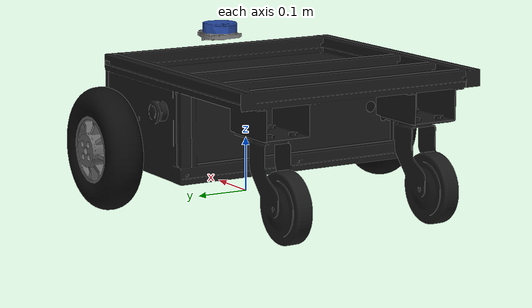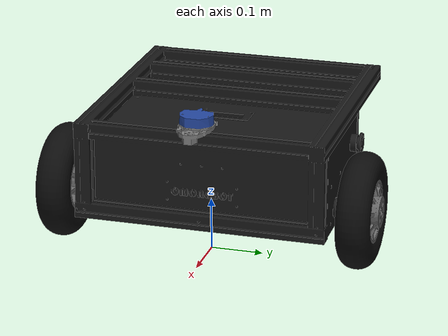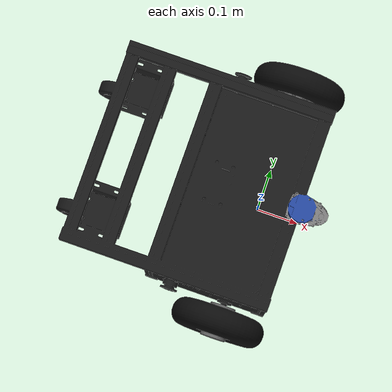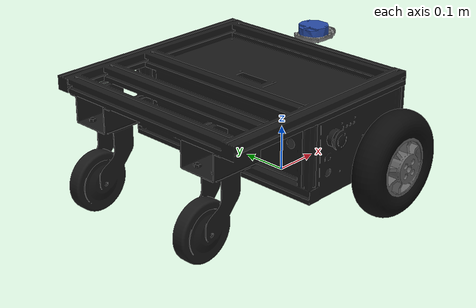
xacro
<?xml version="1.0" ?>
<robot name="omorobot_r1" xmlns:xacro="http://www.ros.org/wiki/xacro">
    <xacro:property name="wheel_diameter" value="0.22"/>
    <xacro:property name="wheel_speration" value="0.56"/>

    <xacro:include filename="$(find omorobot_r1_description)/urdf/gazebo.urdf.xacro"/>
    <xacro:include filename="$(find omorobot_r1_description)/urdf/transmission.urdf.xacro"/>

    <link name="base_footprint"/>

    <link name="base_link">
        <visual>
            <origin xyz="0 0 0" rpy="0 0 0"/>
            <geometry>
                <mesh filename="package://omorobot_r1_description/meshes/base.dae" scale="1 1 1"/>
            </geometry>
        </visual>
        <collision>
            <origin xyz="0 0 0" rpy="0 0 0"/>
            <geometry>
                <mesh filename="package://omorobot_r1_description/meshes/base.dae" scale="1 1 1"/>
            </geometry>
        </collision>
        <inertial>
            <mass value="35.0"/>
            <origin xyz="-0.150641 0 0.020826"/>
            <inertia ixx="0.873747" ixy="0.0" ixz="0.000870" iyy="0.905702" iyz="0.0" izz="1.375955"/>
        </inertial>
    </link>

    <joint name="base_fixed_joint" type="fixed">
        <parent link="base_footprint"/>
        <child link="base_link"/>
        <origin xyz="0 0 ${wheel_diameter/2}" rpy="0 0 0"/>
    </joint>

    <link name="l_wheel">
        <visual>
            <origin xyz="0 0 0" rpy="0 0 ${pi}"/>
            <geometry>
                <mesh filename="package://omorobot_r1_description/meshes/wheel.dae" scale="1 1 1"/>
            </geometry>
        </visual>
        <collision>
            <origin xyz="0 0 0" rpy="0 0 0"/>
            <geometry>
                <mesh filename="package://omorobot_r1_description/meshes/wheel.dae" scale="1 1 1"/>
            </geometry>
        </collision>
        <inertial>
            <mass value="1.0"/>
            <origin xyz="0.0 0.01 0.0"/>
            <inertia ixx="0.003306" ixy="0.0" ixz="0.0" iyy="0.006011" iyz="0.0" izz="0.003306"/>
        </inertial>
    </link>

    <joint name="l_wheel_joint" type="continuous">
        <parent link="base_link"/>
        <child link="l_wheel"/>
        <axis xyz="0 1 0"/>
        <origin xyz="0 ${wheel_speration/2} 0" rpy="0 0 0"/>
    </joint>
    <xacro:insert_velocity_transmission name="l_wheel_joint"/>

    <link name="r_wheel">
        <visual>
            <origin xyz="0 0 0" rpy="0 0 0"/>
            <geometry>
                <mesh filename="package://omorobot_r1_description/meshes/wheel.dae" scale="1 1 1"/>
            </geometry>
        </visual>
        <collision>
            <origin xyz="0 0 0" rpy="0 0 0"/>
            <geometry>
                <mesh filename="package://omorobot_r1_description/meshes/wheel.dae" scale="1 1 1"/>
            </geometry>
        </collision>
        <inertial>
            <mass value="1.0"/>
            <origin xyz="0.0 -0.01 0.0"/>
            <inertia ixx="0.003306" ixy="0.0" ixz="0.0" iyy="0.006011" iyz="0.0" izz="0.003306"/>
        </inertial>
    </link>

    <joint name="r_wheel_joint" type="continuous">
        <parent link="base_link"/>
        <child link="r_wheel"/>
        <axis xyz="0 1 0"/>
        <origin xyz="0 ${-wheel_speration/2} 0" rpy="0 0 0"/>
    </joint>
    <xacro:insert_velocity_transmission name="r_wheel_joint"/>

    <link name="lidar_link">
        <visual>
            <origin xyz="0 0 0" rpy="0 0 0"/>
            <geometry>
                <mesh filename="package://omorobot_r1_description/meshes/lidar.dae" scale="1 1 1"/>
            </geometry>
        </visual>
        <collision>
            <origin xyz="0 0 0" rpy="0 0 0"/>
            <geometry>
                <mesh filename="package://omorobot_r1_description/meshes/lidar.dae" scale="1 1 1"/>
            </geometry>
        </collision>
        <inertial>
            <mass value="0.01"/>
            <origin xyz="0.008122 0.000115 -0.010876"/>
            <inertia ixx="0.000034" ixy="0.0" ixz="0.0" iyy="0.000064" iyz="0.0" izz="0.000082"/>
        </inertial>
    </link>

    <joint name="lidar_fixed_joint" type="fixed">
        <parent link="base_link"/>
        <child link="lidar_link"/>
        <origin xyz="0.095 0 0.185" rpy="0 0 0"/>
    </joint>
</robot>
